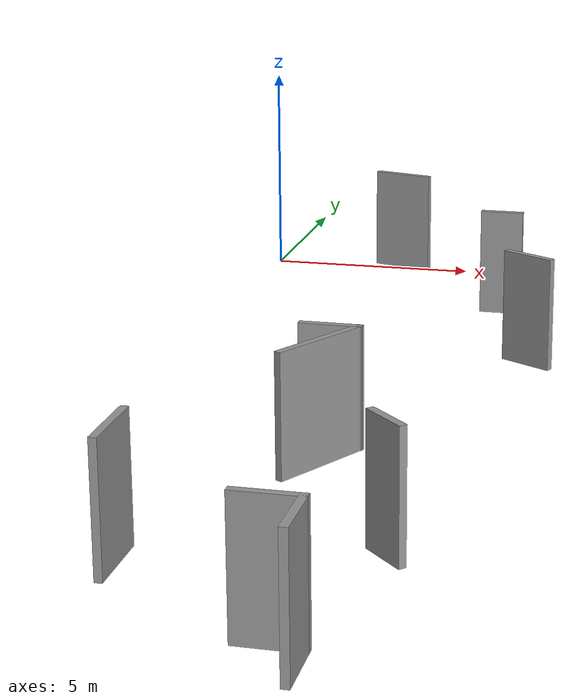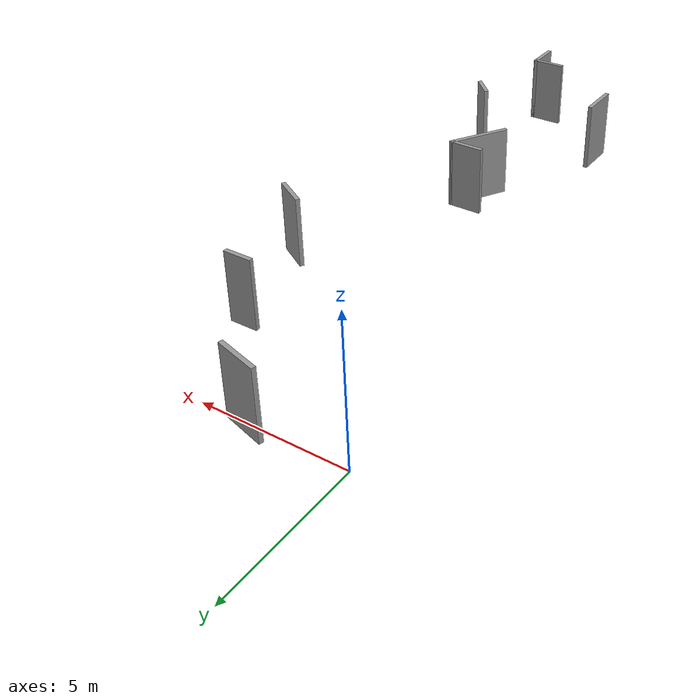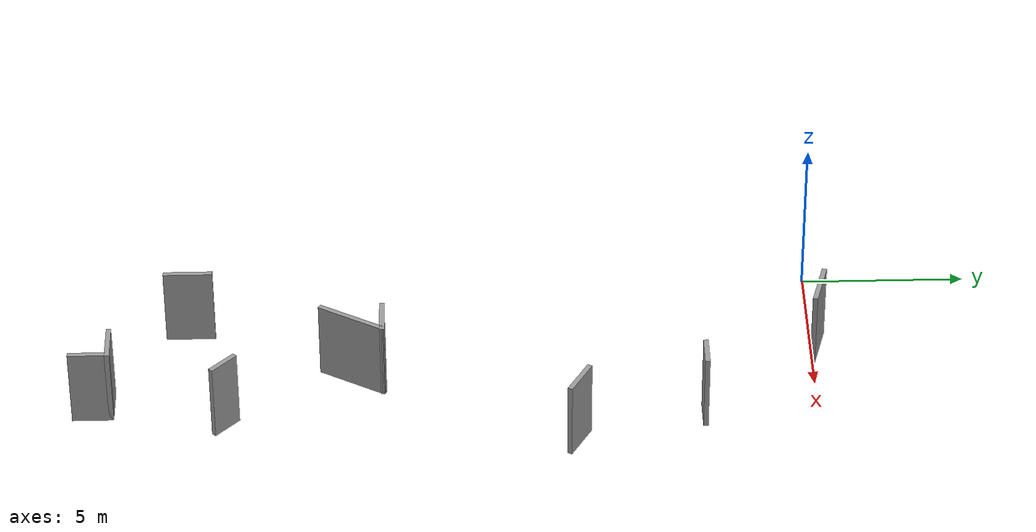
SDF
<?xml version='1.0'?>
<sdf version='1.7'>
  <model name='FBE3-1'>
    <pose>4.05905 -10.9803 0 0 -0 0</pose>
    <link name='Wall_100'>
      <collision name='Wall_100_Collision'>
        <geometry>
          <box>
            <size>1.25 0.15 2.5</size>
          </box>
        </geometry>
        <pose>0 0 1.25 0 -0 0</pose>
      </collision>
      <visual name='Wall_100_Visual'>
        <pose>0 0 1.25 0 -0 0</pose>
        <geometry>
          <box>
            <size>1.25 0.15 2.5</size>
          </box>
        </geometry>
        <material>
          <script>
            <uri>file://media/materials/scripts/gazebo.material</uri>
            <name>Gazebo/Grey</name>
          </script>
          <ambient>1 1 1 1</ambient>
        </material>
        <meta>
          <layer>0</layer>
        </meta>
      </visual>
      <pose>0.442335 -2.10215 0 0 -0 0</pose>
    </link>
    <link name='Wall_102'>
      <collision name='Wall_102_Collision'>
        <geometry>
          <box>
            <size>2.25 0.15 2.5</size>
          </box>
        </geometry>
        <pose>0 0 1.25 0 -0 0</pose>
      </collision>
      <visual name='Wall_102_Visual'>
        <pose>0 0 1.25 0 -0 0</pose>
        <geometry>
          <box>
            <size>2.25 0.15 2.5</size>
          </box>
        </geometry>
        <material>
          <script>
            <uri>file://media/materials/scripts/gazebo.material</uri>
            <name>Gazebo/Grey</name>
          </script>
          <ambient>1 1 1 1</ambient>
        </material>
        <meta>
          <layer>0</layer>
        </meta>
      </visual>
      <pose>0.467335 -3.01147 0 0 -0 -2.0944</pose>
    </link>
    <link name='Wall_104'>
      <collision name='Wall_104_Collision'>
        <geometry>
          <box>
            <size>1 0.15 2.5</size>
          </box>
        </geometry>
        <pose>0 0 1.25 0 -0 0</pose>
      </collision>
      <visual name='Wall_104_Visual'>
        <pose>0 0 1.25 0 -0 0</pose>
        <geometry>
          <box>
            <size>1 0.15 2.5</size>
          </box>
        </geometry>
        <material>
          <script>
            <uri>file://media/materials/scripts/gazebo.material</uri>
            <name>Gazebo/Grey</name>
          </script>
          <ambient>1 1 1 1</ambient>
        </material>
        <meta>
          <layer>0</layer>
        </meta>
      </visual>
      <pose>2.35029 7.56497 0 0 -0 3.14159</pose>
    </link>
    <link name='Wall_88'>
      <collision name='Wall_88_Collision'>
        <geometry>
          <box>
            <size>1.5 0.15 2.5</size>
          </box>
        </geometry>
        <pose>0 0 1.25 0 -0 0</pose>
      </collision>
      <visual name='Wall_88_Visual'>
        <pose>0 0 1.25 0 -0 0</pose>
        <geometry>
          <box>
            <size>1.5 0.15 2.5</size>
          </box>
        </geometry>
        <material>
          <script>
            <uri>file://media/materials/scripts/gazebo.material</uri>
            <name>Gazebo/Grey</name>
          </script>
          <ambient>1 1 1 1</ambient>
        </material>
        <meta>
          <layer>0</layer>
        </meta>
      </visual>
      <pose>-0.765549 11.1798 0 0 -0 -0.261799</pose>
    </link>
    <link name='Wall_90'>
      <collision name='Wall_90_Collision'>
        <geometry>
          <box>
            <size>1.25 0.15 2.5</size>
          </box>
        </geometry>
        <pose>0 0 1.25 0 -0 0</pose>
      </collision>
      <visual name='Wall_90_Visual'>
        <pose>0 0 1.25 0 -0 0</pose>
        <geometry>
          <box>
            <size>1.25 0.15 2.5</size>
          </box>
        </geometry>
        <material>
          <script>
            <uri>file://media/materials/scripts/gazebo.material</uri>
            <name>Gazebo/Grey</name>
          </script>
          <ambient>1 1 1 1</ambient>
        </material>
        <meta>
          <layer>0</layer>
        </meta>
      </visual>
      <pose>3.48029 3.75236 0 0 -0 2.61799</pose>
    </link>
    <link name='Wall_92'>
      <collision name='Wall_92_Collision'>
        <geometry>
          <box>
            <size>1 0.15 2.5</size>
          </box>
        </geometry>
        <pose>0 0 1.25 0 -0 0</pose>
      </collision>
      <visual name='Wall_92_Visual'>
        <pose>0 0 1.25 0 -0 0</pose>
        <geometry>
          <box>
            <size>1 0.15 2.5</size>
          </box>
        </geometry>
        <material>
          <script>
            <uri>file://media/materials/scripts/gazebo.material</uri>
            <name>Gazebo/Grey</name>
          </script>
          <ambient>1 1 1 1</ambient>
        </material>
        <meta>
          <layer>0</layer>
        </meta>
      </visual>
      <pose>2.5087 -6.81734 0 0 -0 2.35619</pose>
    </link>
    <link name='Wall_94'>
      <collision name='Wall_94_Collision'>
        <geometry>
          <box>
            <size>1.25 0.15 2.5</size>
          </box>
        </geometry>
        <pose>0 0 1.25 0 -0 0</pose>
      </collision>
      <visual name='Wall_94_Visual'>
        <pose>0 0 1.25 0 -0 0</pose>
        <geometry>
          <box>
            <size>1.25 0.15 2.5</size>
          </box>
        </geometry>
        <material>
          <script>
            <uri>file://media/materials/scripts/gazebo.material</uri>
            <name>Gazebo/Grey</name>
          </script>
          <ambient>1 1 1 1</ambient>
        </material>
        <meta>
          <layer>0</layer>
        </meta>
      </visual>
      <pose>2.01505 -10.8213 0 0 -0 1.5708</pose>
    </link>
    <link name='Wall_96'>
      <collision name='Wall_96_Collision'>
        <geometry>
          <box>
            <size>1.25 0.15 2.5</size>
          </box>
        </geometry>
        <pose>0 0 1.25 0 -0 0</pose>
      </collision>
      <visual name='Wall_96_Visual'>
        <pose>0 0 1.25 0 -0 0</pose>
        <geometry>
          <box>
            <size>1.25 0.15 2.5</size>
          </box>
        </geometry>
        <material>
          <script>
            <uri>file://media/materials/scripts/gazebo.material</uri>
            <name>Gazebo/Grey</name>
          </script>
          <ambient>1 1 1 1</ambient>
        </material>
        <meta>
          <layer>0</layer>
        </meta>
      </visual>
      <pose>1.46505 -10.2713 0 0 -0 3.14159</pose>
    </link>
    <link name='Wall_98'>
      <collision name='Wall_98_Collision'>
        <geometry>
          <box>
            <size>1.5 0.15 2.5</size>
          </box>
        </geometry>
        <pose>0 0 1.25 0 -0 0</pose>
      </collision>
      <visual name='Wall_98_Visual'>
        <pose>0 0 1.25 0 -0 0</pose>
        <geometry>
          <box>
            <size>1.5 0.15 2.5</size>
          </box>
        </geometry>
        <material>
          <script>
            <uri>file://media/materials/scripts/gazebo.material</uri>
            <name>Gazebo/Grey</name>
          </script>
          <ambient>1 1 1 1</ambient>
        </material>
        <meta>
          <layer>0</layer>
        </meta>
      </visual>
      <pose>-1.80584 -8.01317 0 0 -0 -1.5708</pose>
    </link>
    <static>1</static>
  </model>
</sdf>
